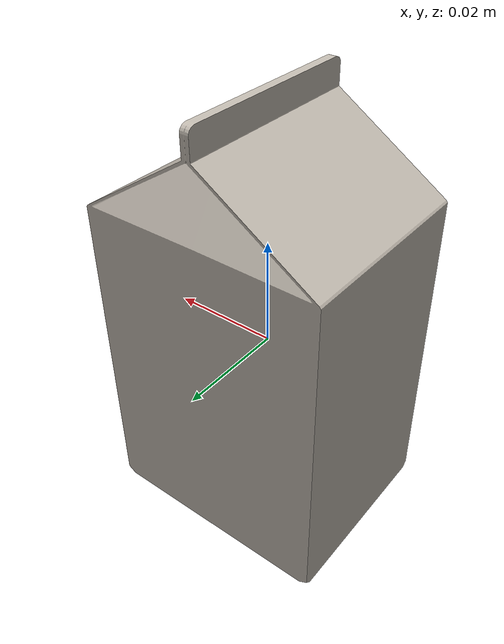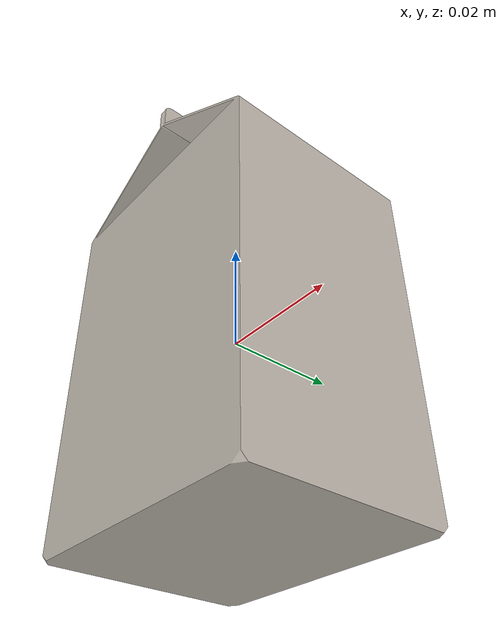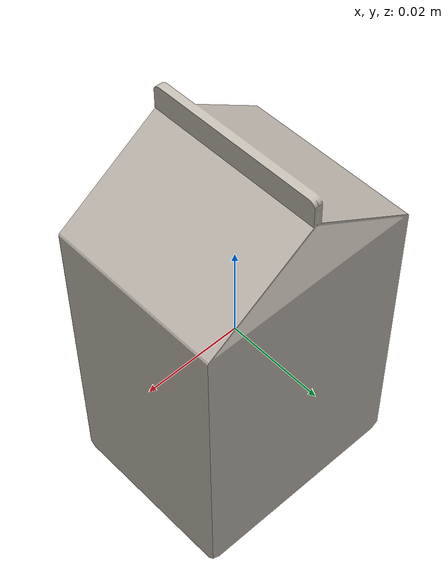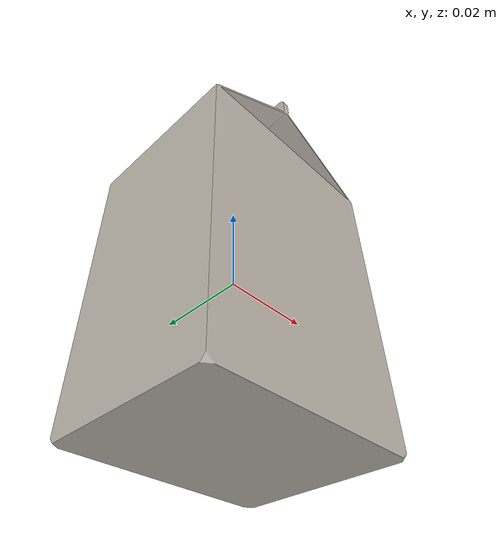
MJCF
<mujoco model="chocolate_milk">
  <asset>
    <mesh file="meshes/milk.msh" name="milk_mesh" scale="1.0 0.8 0.5"/>
    <texture file="../textures/chocolate_milk.png" name="tex-chocolatemilk" type="2d"/>
    <material name="chocolate_milk" reflectance="0.7" texrepeat="5 5" texture="tex-chocolatemilk" texuniform="true"/>
  </asset>
  <worldbody>
    <body>
      <body name="object">
        <geom pos="0 0 0" mesh="milk_mesh" type="mesh" solimp="0.998 0.998 0.001" solref="0.001 1" density="100" friction="0.95 0.3 0.1" material="chocolate_milk" group="0" condim="4"/>
      </body>
      <site rgba="0 0 0 0" size="0.005" pos="0 0 -0.085" name="bottom_site"/>
      <site rgba="0 0 0 0" size="0.005" pos="0 0 0.075" name="top_site"/>
      <site rgba="0 0 0 0" size="0.005" pos="0.025 0.025 0" name="horizontal_radius_site"/>
    </body>
  </worldbody>
</mujoco>
